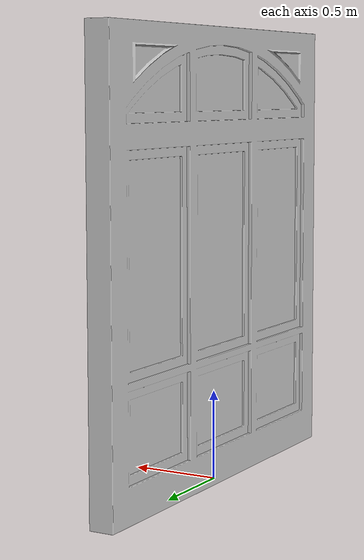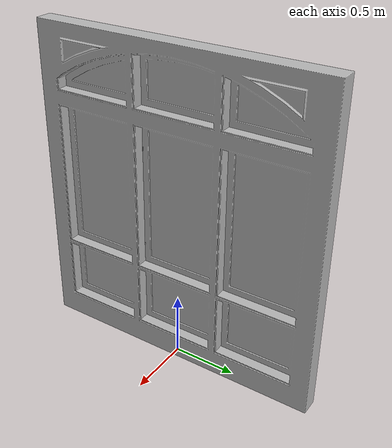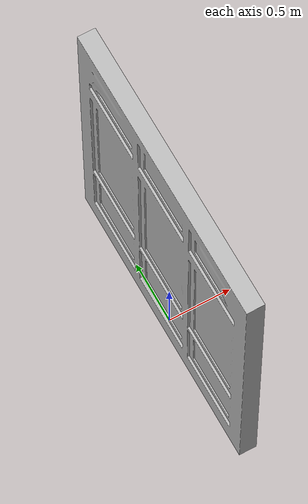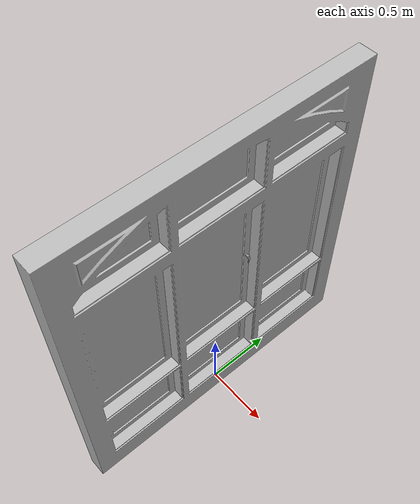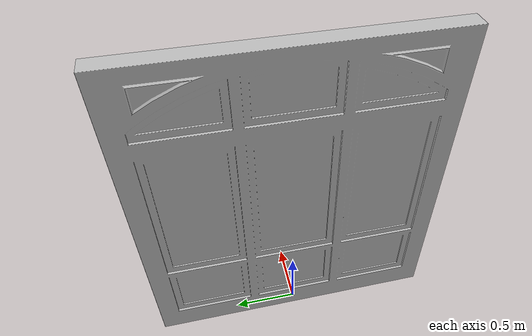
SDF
<?xml version='1.0'?>
<sdf version='1.4'>
  <model name='s__2014'>
    <pose>0 0 0 0 0 0</pose>
    <static>true</static>
    <link name='link'>
      <collision name='collision'>
        <pose>0 0 0 0 0 0</pose>
        <geometry>
          <box>
            <size>0.160006 2.3 2</size>
          </box>
        </geometry>
      </collision>
      <visual name='visual'>
        <pose>0 0 0 0 0 0</pose>
        <geometry>
          <mesh><uri>model://s__2014/s__2014.dae</uri></mesh>
        </geometry>
      </visual>
    </link>
  </model>
</sdf>
